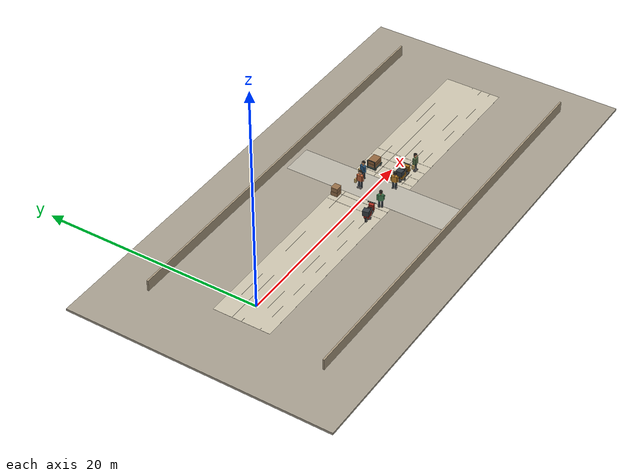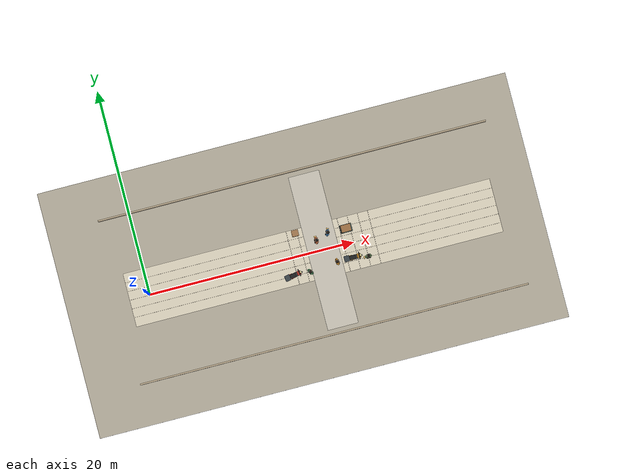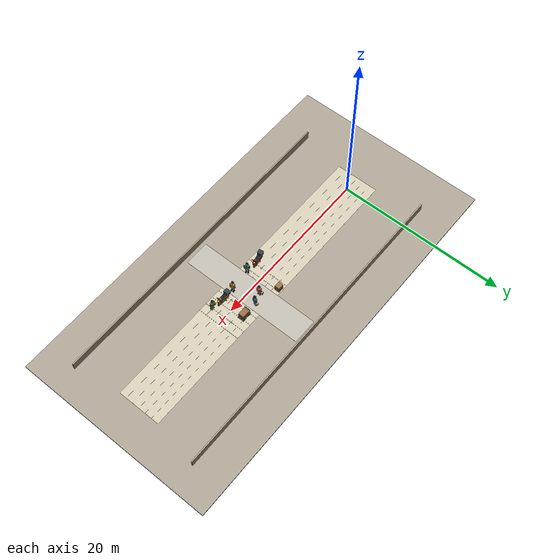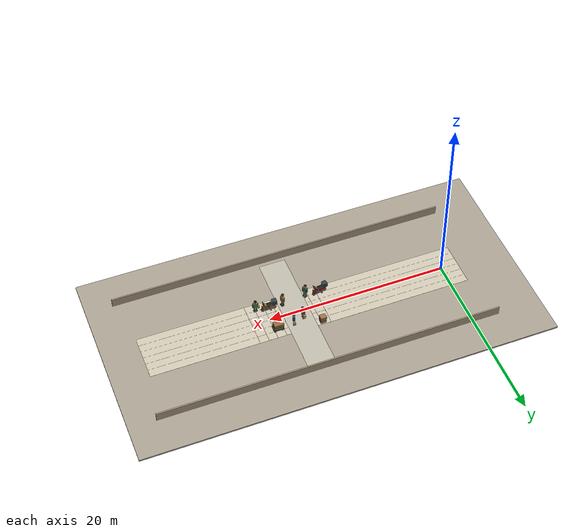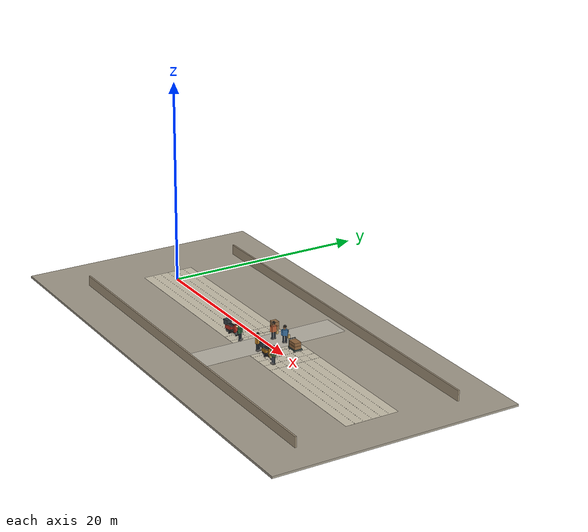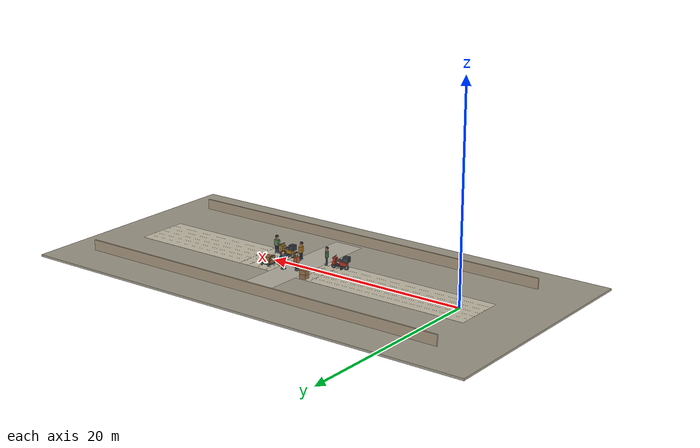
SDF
<sdf version="1.10">
 <world name="swan_market">
  <model name="ground">
   <static>true</static>
   <pose>15 0 -0.1 0 0 0</pose>
   <link name="body">
    <collision name="box_collision"><geometry><box><size>46 24 0.2</size></box></geometry></collision>
    <visual name="box_visual">
     <geometry><box><size>46 24 0.2</size></box></geometry>
     <material><ambient>0.64 0.61 0.55 1</ambient><diffuse>0.64 0.61 0.55 1</diffuse></material>
    </visual>
   </link>
  </model>
  <model name="market_paving">
   <static>true</static>
   <pose>16 0 0.002 0 0 0</pose>
   <link name="body">
    <visual name="box_visual">
     <geometry><box><size>36 5.2 0.004</size></box></geometry>
     <material><ambient>0.79 0.76 0.68 1</ambient><diffuse>0.79 0.76 0.68 1</diffuse></material>
    </visual>
   </link>
  </model>
  <model name="paving_joint_14">
   <static>true</static>
   <pose>14 0 0.0045 0 0 0</pose>
   <link name="body">
    <visual name="box_visual">
     <geometry><box><size>0.025 5.2 0.001</size></box></geometry>
     <material><ambient>0.67 0.64 0.57 1</ambient><diffuse>0.67 0.64 0.57 1</diffuse></material>
    </visual>
   </link>
  </model>
  <model name="paving_joint_15">
   <static>true</static>
   <pose>15 0 0.0045 0 0 0</pose>
   <link name="body">
    <visual name="box_visual">
     <geometry><box><size>0.025 5.2 0.001</size></box></geometry>
     <material><ambient>0.67 0.64 0.57 1</ambient><diffuse>0.67 0.64 0.57 1</diffuse></material>
    </visual>
   </link>
  </model>
  <model name="paving_joint_16">
   <static>true</static>
   <pose>16 0 0.0045 0 0 0</pose>
   <link name="body">
    <visual name="box_visual">
     <geometry><box><size>0.025 5.2 0.001</size></box></geometry>
     <material><ambient>0.67 0.64 0.57 1</ambient><diffuse>0.67 0.64 0.57 1</diffuse></material>
    </visual>
   </link>
  </model>
  <model name="paving_joint_17">
   <static>true</static>
   <pose>17 0 0.0045 0 0 0</pose>
   <link name="body">
    <visual name="box_visual">
     <geometry><box><size>0.025 5.2 0.001</size></box></geometry>
     <material><ambient>0.67 0.64 0.57 1</ambient><diffuse>0.67 0.64 0.57 1</diffuse></material>
    </visual>
   </link>
  </model>
  <model name="paving_joint_18">
   <static>true</static>
   <pose>18 0 0.0045 0 0 0</pose>
   <link name="body">
    <visual name="box_visual">
     <geometry><box><size>0.025 5.2 0.001</size></box></geometry>
     <material><ambient>0.67 0.64 0.57 1</ambient><diffuse>0.67 0.64 0.57 1</diffuse></material>
    </visual>
   </link>
  </model>
  <model name="paving_joint_19">
   <static>true</static>
   <pose>19 0 0.0045 0 0 0</pose>
   <link name="body">
    <visual name="box_visual">
     <geometry><box><size>0.025 5.2 0.001</size></box></geometry>
     <material><ambient>0.67 0.64 0.57 1</ambient><diffuse>0.67 0.64 0.57 1</diffuse></material>
    </visual>
   </link>
  </model>
  <model name="paving_joint_20">
   <static>true</static>
   <pose>20 0 0.0045 0 0 0</pose>
   <link name="body">
    <visual name="box_visual">
     <geometry><box><size>0.025 5.2 0.001</size></box></geometry>
     <material><ambient>0.67 0.64 0.57 1</ambient><diffuse>0.67 0.64 0.57 1</diffuse></material>
    </visual>
   </link>
  </model>
  <model name="paving_joint_21">
   <static>true</static>
   <pose>21 0 0.0045 0 0 0</pose>
   <link name="body">
    <visual name="box_visual">
     <geometry><box><size>0.025 5.2 0.001</size></box></geometry>
     <material><ambient>0.67 0.64 0.57 1</ambient><diffuse>0.67 0.64 0.57 1</diffuse></material>
    </visual>
   </link>
  </model>
  <model name="paving_joint_22">
   <static>true</static>
   <pose>22 0 0.0045 0 0 0</pose>
   <link name="body">
    <visual name="box_visual">
     <geometry><box><size>0.025 5.2 0.001</size></box></geometry>
     <material><ambient>0.67 0.64 0.57 1</ambient><diffuse>0.67 0.64 0.57 1</diffuse></material>
    </visual>
   </link>
  </model>
  <model name="paving_seam_-1.7">
   <static>true</static>
   <pose>16 -1.7 0.0045 0 0 0</pose>
   <link name="body">
    <visual name="box_visual">
     <geometry><box><size>36 0.015 0.001</size></box></geometry>
     <material><ambient>0.68 0.65 0.58 1</ambient><diffuse>0.68 0.65 0.58 1</diffuse></material>
    </visual>
   </link>
  </model>
  <model name="paving_seam_-0.85">
   <static>true</static>
   <pose>16 -0.85 0.0045 0 0 0</pose>
   <link name="body">
    <visual name="box_visual">
     <geometry><box><size>36 0.015 0.001</size></box></geometry>
     <material><ambient>0.68 0.65 0.58 1</ambient><diffuse>0.68 0.65 0.58 1</diffuse></material>
    </visual>
   </link>
  </model>
  <model name="paving_seam_0">
   <static>true</static>
   <pose>16 0 0.0045 0 0 0</pose>
   <link name="body">
    <visual name="box_visual">
     <geometry><box><size>36 0.015 0.001</size></box></geometry>
     <material><ambient>0.68 0.65 0.58 1</ambient><diffuse>0.68 0.65 0.58 1</diffuse></material>
    </visual>
   </link>
  </model>
  <model name="paving_seam_0.85">
   <static>true</static>
   <pose>16 0.85 0.0045 0 0 0</pose>
   <link name="body">
    <visual name="box_visual">
     <geometry><box><size>36 0.015 0.001</size></box></geometry>
     <material><ambient>0.68 0.65 0.58 1</ambient><diffuse>0.68 0.65 0.58 1</diffuse></material>
    </visual>
   </link>
  </model>
  <model name="paving_seam_1.7">
   <static>true</static>
   <pose>16 1.7 0.0045 0 0 0</pose>
   <link name="body">
    <visual name="box_visual">
     <geometry><box><size>36 0.015 0.001</size></box></geometry>
     <material><ambient>0.68 0.65 0.58 1</ambient><diffuse>0.68 0.65 0.58 1</diffuse></material>
    </visual>
   </link>
  </model>
  <model name="cross_aisle">
   <static>true</static>
   <pose>17 0 0.006 0 0 0</pose>
   <link name="body">
    <visual name="box_visual">
     <geometry><box><size>3 15 0.002</size></box></geometry>
     <material><ambient>0.72 0.7 0.65 1</ambient><diffuse>0.72 0.7 0.65 1</diffuse></material>
    </visual>
   </link>
  </model>
  <model name="boundary_-1">
   <static>true</static>
   <pose>16 -8 0.5 0 0 0</pose>
   <link name="body">
    <collision name="box_collision"><geometry><box><size>38 0.15 1</size></box></geometry></collision>
    <visual name="box_visual">
     <geometry><box><size>38 0.15 1</size></box></geometry>
     <material><ambient>0.65 0.59 0.49 1</ambient><diffuse>0.65 0.59 0.49 1</diffuse></material>
    </visual>
   </link>
  </model>
  <model name="boundary_1">
   <static>true</static>
   <pose>16 8 0.5 0 0 0</pose>
   <link name="body">
    <collision name="box_collision"><geometry><box><size>38 0.15 1</size></box></geometry></collision>
    <visual name="box_visual">
     <geometry><box><size>38 0.15 1</size></box></geometry>
     <material><ambient>0.65 0.59 0.49 1</ambient><diffuse>0.65 0.59 0.49 1</diffuse></material>
    </visual>
   </link>
  </model>
  <model name="shopper_crossing">
   <static>true</static>
   <pose>16.6 1 0 0 0 3.1416</pose>
   <link name="body">
    <collision name="leg_-1_collision">
     <pose>0 -0.12 0.4 0 0 0</pose>
     <geometry><cylinder><radius>0.085</radius><length>0.68</length></cylinder></geometry>
    </collision>
    <visual name="leg_-1_visual">
     <pose>0 -0.12 0.4 0 0 0</pose>
     <geometry><cylinder><radius>0.085</radius><length>0.68</length></cylinder></geometry>
     <material><ambient>0.12 0.15 0.18 1</ambient><diffuse>0.12 0.15 0.18 1</diffuse></material>
    </visual>
    <collision name="shoe_-1_collision">
     <pose>0.06 -0.12 0.055 0 0 0</pose>
     <geometry><box><size>0.28 0.17 0.11</size></box></geometry>
    </collision>
    <visual name="shoe_-1_visual">
     <pose>0.06 -0.12 0.055 0 0 0</pose>
     <geometry><box><size>0.28 0.17 0.11</size></box></geometry>
     <material><ambient>0.08 0.07 0.06 1</ambient><diffuse>0.08 0.07 0.06 1</diffuse></material>
    </visual>
    <collision name="arm_-1_collision">
     <pose>0.02 -0.27 1.02 0 -0.12 0</pose>
     <geometry><cylinder><radius>0.068</radius><length>0.48</length></cylinder></geometry>
    </collision>
    <visual name="arm_-1_visual">
     <pose>0.02 -0.27 1.02 0 -0.12 0</pose>
     <geometry><cylinder><radius>0.068</radius><length>0.48</length></cylinder></geometry>
     <material><ambient>0.74 0.38 0.22 1</ambient><diffuse>0.74 0.38 0.22 1</diffuse></material>
    </visual>
    <collision name="leg_1_collision">
     <pose>0 0.12 0.4 0 0 0</pose>
     <geometry><cylinder><radius>0.085</radius><length>0.68</length></cylinder></geometry>
    </collision>
    <visual name="leg_1_visual">
     <pose>0 0.12 0.4 0 0 0</pose>
     <geometry><cylinder><radius>0.085</radius><length>0.68</length></cylinder></geometry>
     <material><ambient>0.12 0.15 0.18 1</ambient><diffuse>0.12 0.15 0.18 1</diffuse></material>
    </visual>
    <collision name="shoe_1_collision">
     <pose>0.06 0.12 0.055 0 0 0</pose>
     <geometry><box><size>0.28 0.17 0.11</size></box></geometry>
    </collision>
    <visual name="shoe_1_visual">
     <pose>0.06 0.12 0.055 0 0 0</pose>
     <geometry><box><size>0.28 0.17 0.11</size></box></geometry>
     <material><ambient>0.08 0.07 0.06 1</ambient><diffuse>0.08 0.07 0.06 1</diffuse></material>
    </visual>
    <collision name="arm_1_collision">
     <pose>0.02 0.27 1.02 0 0.12 0</pose>
     <geometry><cylinder><radius>0.068</radius><length>0.48</length></cylinder></geometry>
    </collision>
    <visual name="arm_1_visual">
     <pose>0.02 0.27 1.02 0 0.12 0</pose>
     <geometry><cylinder><radius>0.068</radius><length>0.48</length></cylinder></geometry>
     <material><ambient>0.74 0.38 0.22 1</ambient><diffuse>0.74 0.38 0.22 1</diffuse></material>
    </visual>
    <collision name="torso_collision">
     <pose>0 0 1.02 0 0 0</pose>
     <geometry><box><size>0.3 0.43 0.58</size></box></geometry>
    </collision>
    <visual name="torso_visual">
     <pose>0 0 1.02 0 0 0</pose>
     <geometry><box><size>0.3 0.43 0.58</size></box></geometry>
     <material><ambient>0.74 0.38 0.22 1</ambient><diffuse>0.74 0.38 0.22 1</diffuse></material>
    </visual>
    <visual name="neck_visual">
     <pose>0 0 1.37 0 0 0</pose>
     <geometry><cylinder><radius>0.07</radius><length>0.13</length></cylinder></geometry>
     <material><ambient>0.77 0.56 0.4 1</ambient><diffuse>0.77 0.56 0.4 1</diffuse></material>
    </visual>
    <collision name="head_collision">
     <pose>0 0 1.57 0 0 0</pose>
     <geometry><sphere><radius>0.16</radius></sphere></geometry>
    </collision>
    <visual name="head_visual">
     <pose>0 0 1.57 0 0 0</pose>
     <geometry><sphere><radius>0.16</radius></sphere></geometry>
     <material><ambient>0.77 0.56 0.4 1</ambient><diffuse>0.77 0.56 0.4 1</diffuse></material>
    </visual>
    <visual name="hair_visual">
     <pose>-0.025 0 1.63 0 0 0</pose>
     <geometry><sphere><radius>0.155</radius></sphere></geometry>
     <material><ambient>0.1 0.08 0.06 1</ambient><diffuse>0.1 0.08 0.06 1</diffuse></material>
    </visual>
    <collision name="shopping_bag_collision">
     <pose>0.04 -0.38 0.6 0 0 0</pose>
     <geometry><box><size>0.24 0.17 0.33</size></box></geometry>
    </collision>
    <visual name="shopping_bag_visual">
     <pose>0.04 -0.38 0.6 0 0 0</pose>
     <geometry><box><size>0.24 0.17 0.33</size></box></geometry>
     <material><ambient>0.78 0.65 0.39 1</ambient><diffuse>0.78 0.65 0.39 1</diffuse></material>
    </visual>
   </link>
  </model>
  <model name="shopper_grocery">
   <static>true</static>
   <pose>21 -1.65 0 0 0 -1.5708</pose>
   <link name="body">
    <collision name="leg_-1_collision">
     <pose>0 -0.12 0.4 0 0 0</pose>
     <geometry><cylinder><radius>0.085</radius><length>0.68</length></cylinder></geometry>
    </collision>
    <visual name="leg_-1_visual">
     <pose>0 -0.12 0.4 0 0 0</pose>
     <geometry><cylinder><radius>0.085</radius><length>0.68</length></cylinder></geometry>
     <material><ambient>0.12 0.15 0.18 1</ambient><diffuse>0.12 0.15 0.18 1</diffuse></material>
    </visual>
    <collision name="shoe_-1_collision">
     <pose>0.06 -0.12 0.055 0 0 0</pose>
     <geometry><box><size>0.28 0.17 0.11</size></box></geometry>
    </collision>
    <visual name="shoe_-1_visual">
     <pose>0.06 -0.12 0.055 0 0 0</pose>
     <geometry><box><size>0.28 0.17 0.11</size></box></geometry>
     <material><ambient>0.08 0.07 0.06 1</ambient><diffuse>0.08 0.07 0.06 1</diffuse></material>
    </visual>
    <collision name="arm_-1_collision">
     <pose>0.02 -0.27 1.02 0 -0.12 0</pose>
     <geometry><cylinder><radius>0.068</radius><length>0.48</length></cylinder></geometry>
    </collision>
    <visual name="arm_-1_visual">
     <pose>0.02 -0.27 1.02 0 -0.12 0</pose>
     <geometry><cylinder><radius>0.068</radius><length>0.48</length></cylinder></geometry>
     <material><ambient>0.36 0.48 0.31 1</ambient><diffuse>0.36 0.48 0.31 1</diffuse></material>
    </visual>
    <collision name="leg_1_collision">
     <pose>0 0.12 0.4 0 0 0</pose>
     <geometry><cylinder><radius>0.085</radius><length>0.68</length></cylinder></geometry>
    </collision>
    <visual name="leg_1_visual">
     <pose>0 0.12 0.4 0 0 0</pose>
     <geometry><cylinder><radius>0.085</radius><length>0.68</length></cylinder></geometry>
     <material><ambient>0.12 0.15 0.18 1</ambient><diffuse>0.12 0.15 0.18 1</diffuse></material>
    </visual>
    <collision name="shoe_1_collision">
     <pose>0.06 0.12 0.055 0 0 0</pose>
     <geometry><box><size>0.28 0.17 0.11</size></box></geometry>
    </collision>
    <visual name="shoe_1_visual">
     <pose>0.06 0.12 0.055 0 0 0</pose>
     <geometry><box><size>0.28 0.17 0.11</size></box></geometry>
     <material><ambient>0.08 0.07 0.06 1</ambient><diffuse>0.08 0.07 0.06 1</diffuse></material>
    </visual>
    <collision name="arm_1_collision">
     <pose>0.02 0.27 1.02 0 0.12 0</pose>
     <geometry><cylinder><radius>0.068</radius><length>0.48</length></cylinder></geometry>
    </collision>
    <visual name="arm_1_visual">
     <pose>0.02 0.27 1.02 0 0.12 0</pose>
     <geometry><cylinder><radius>0.068</radius><length>0.48</length></cylinder></geometry>
     <material><ambient>0.36 0.48 0.31 1</ambient><diffuse>0.36 0.48 0.31 1</diffuse></material>
    </visual>
    <collision name="torso_collision">
     <pose>0 0 1.02 0 0 0</pose>
     <geometry><box><size>0.3 0.43 0.58</size></box></geometry>
    </collision>
    <visual name="torso_visual">
     <pose>0 0 1.02 0 0 0</pose>
     <geometry><box><size>0.3 0.43 0.58</size></box></geometry>
     <material><ambient>0.36 0.48 0.31 1</ambient><diffuse>0.36 0.48 0.31 1</diffuse></material>
    </visual>
    <visual name="neck_visual">
     <pose>0 0 1.37 0 0 0</pose>
     <geometry><cylinder><radius>0.07</radius><length>0.13</length></cylinder></geometry>
     <material><ambient>0.77 0.56 0.4 1</ambient><diffuse>0.77 0.56 0.4 1</diffuse></material>
    </visual>
    <collision name="head_collision">
     <pose>0 0 1.57 0 0 0</pose>
     <geometry><sphere><radius>0.16</radius></sphere></geometry>
    </collision>
    <visual name="head_visual">
     <pose>0 0 1.57 0 0 0</pose>
     <geometry><sphere><radius>0.16</radius></sphere></geometry>
     <material><ambient>0.77 0.56 0.4 1</ambient><diffuse>0.77 0.56 0.4 1</diffuse></material>
    </visual>
    <visual name="hair_visual">
     <pose>-0.025 0 1.63 0 0 0</pose>
     <geometry><sphere><radius>0.155</radius></sphere></geometry>
     <material><ambient>0.1 0.08 0.06 1</ambient><diffuse>0.1 0.08 0.06 1</diffuse></material>
    </visual>
    <collision name="shopping_bag_collision">
     <pose>0.04 -0.38 0.6 0 0 0</pose>
     <geometry><box><size>0.24 0.17 0.33</size></box></geometry>
    </collision>
    <visual name="shopping_bag_visual">
     <pose>0.04 -0.38 0.6 0 0 0</pose>
     <geometry><box><size>0.24 0.17 0.33</size></box></geometry>
     <material><ambient>0.78 0.65 0.39 1</ambient><diffuse>0.78 0.65 0.39 1</diffuse></material>
    </visual>
   </link>
  </model>
  <model name="motorcycle_delivery">
   <static>true</static>
   <pose>13.7 -1.65 0 0 0 0.18</pose>
   <link name="body">
    <collision name="tire_0_collision">
     <pose>-0.61 0 0.25 1.5708 0 0</pose>
     <geometry><cylinder><radius>0.25</radius><length>0.14</length></cylinder></geometry>
    </collision>
    <visual name="tire_0_visual">
     <pose>-0.61 0 0.25 1.5708 0 0</pose>
     <geometry><cylinder><radius>0.25</radius><length>0.14</length></cylinder></geometry>
     <material><ambient>0.075 0.075 0.07 1</ambient><diffuse>0.075 0.075 0.07 1</diffuse></material>
    </visual>
    <visual name="hub_0_visual">
     <pose>-0.61 0 0.25 1.5708 0 0</pose>
     <geometry><cylinder><radius>0.13</radius><length>0.145</length></cylinder></geometry>
     <material><ambient>0.57 0.59 0.6 1</ambient><diffuse>0.57 0.59 0.6 1</diffuse></material>
    </visual>
    <collision name="tire_1_collision">
     <pose>0.62 0 0.25 1.5708 0 0</pose>
     <geometry><cylinder><radius>0.25</radius><length>0.14</length></cylinder></geometry>
    </collision>
    <visual name="tire_1_visual">
     <pose>0.62 0 0.25 1.5708 0 0</pose>
     <geometry><cylinder><radius>0.25</radius><length>0.14</length></cylinder></geometry>
     <material><ambient>0.075 0.075 0.07 1</ambient><diffuse>0.075 0.075 0.07 1</diffuse></material>
    </visual>
    <visual name="hub_1_visual">
     <pose>0.62 0 0.25 1.5708 0 0</pose>
     <geometry><cylinder><radius>0.13</radius><length>0.145</length></cylinder></geometry>
     <material><ambient>0.57 0.59 0.6 1</ambient><diffuse>0.57 0.59 0.6 1</diffuse></material>
    </visual>
    <collision name="deck_collision">
     <pose>0 0 0.33 0 0 0</pose>
     <geometry><box><size>1.2 0.43 0.17</size></box></geometry>
    </collision>
    <visual name="deck_visual">
     <pose>0 0 0.33 0 0 0</pose>
     <geometry><box><size>1.2 0.43 0.17</size></box></geometry>
     <material><ambient>0.18 0.18 0.18 1</ambient><diffuse>0.18 0.18 0.18 1</diffuse></material>
    </visual>
    <collision name="rear_body_collision">
     <pose>-0.36 0 0.59 0 0 0</pose>
     <geometry><box><size>0.65 0.46 0.4</size></box></geometry>
    </collision>
    <visual name="rear_body_visual">
     <pose>-0.36 0 0.59 0 0 0</pose>
     <geometry><box><size>0.65 0.46 0.4</size></box></geometry>
     <material><ambient>0.65 0.17 0.12 1</ambient><diffuse>0.65 0.17 0.12 1</diffuse></material>
    </visual>
    <collision name="seat_collision">
     <pose>-0.2 0 0.83 0 0 0</pose>
     <geometry><box><size>0.8 0.4 0.12</size></box></geometry>
    </collision>
    <visual name="seat_visual">
     <pose>-0.2 0 0.83 0 0 0</pose>
     <geometry><box><size>0.8 0.4 0.12</size></box></geometry>
     <material><ambient>0.1 0.1 0.1 1</ambient><diffuse>0.1 0.1 0.1 1</diffuse></material>
    </visual>
    <collision name="front_fairing_collision">
     <pose>0.53 0 0.69 0 -0.2 0</pose>
     <geometry><box><size>0.23 0.43 0.69</size></box></geometry>
    </collision>
    <visual name="front_fairing_visual">
     <pose>0.53 0 0.69 0 -0.2 0</pose>
     <geometry><box><size>0.23 0.43 0.69</size></box></geometry>
     <material><ambient>0.65 0.17 0.12 1</ambient><diffuse>0.65 0.17 0.12 1</diffuse></material>
    </visual>
    <collision name="handlebar_collision">
     <pose>0.56 0 1.12 1.5708 0 0</pose>
     <geometry><cylinder><radius>0.035</radius><length>0.72</length></cylinder></geometry>
    </collision>
    <visual name="handlebar_visual">
     <pose>0.56 0 1.12 1.5708 0 0</pose>
     <geometry><cylinder><radius>0.035</radius><length>0.72</length></cylinder></geometry>
     <material><ambient>0.18 0.18 0.18 1</ambient><diffuse>0.18 0.18 0.18 1</diffuse></material>
    </visual>
    <visual name="headlight_visual">
     <pose>0.7 0 0.94 0 0 0</pose>
     <geometry><sphere><radius>0.095</radius></sphere></geometry>
     <material><ambient>0.96 0.92 0.66 1</ambient><diffuse>0.96 0.92 0.66 1</diffuse></material>
    </visual>
    <collision name="delivery_box_collision">
     <pose>-0.65 0 1.01 0 0 0</pose>
     <geometry><box><size>0.51 0.55 0.48</size></box></geometry>
    </collision>
    <visual name="delivery_box_visual">
     <pose>-0.65 0 1.01 0 0 0</pose>
     <geometry><box><size>0.51 0.55 0.48</size></box></geometry>
     <material><ambient>0.2 0.23 0.25 1</ambient><diffuse>0.2 0.23 0.25 1</diffuse></material>
    </visual>
    <collision name="stand_collision">
     <pose>-0.2 0 0.1 0 0 0</pose>
     <geometry><box><size>0.12 0.5 0.2</size></box></geometry>
    </collision>
    <visual name="stand_visual">
     <pose>-0.2 0 0.1 0 0 0</pose>
     <geometry><box><size>0.12 0.5 0.2</size></box></geometry>
     <material><ambient>0.12 0.12 0.12 1</ambient><diffuse>0.12 0.12 0.12 1</diffuse></material>
    </visual>
   </link>
  </model>
  <model name="handcart_unloading">
   <static>true</static>
   <pose>19.6 1.45 0 0 0 0</pose>
   <link name="body">
    <collision name="bed_collision">
     <pose>0 0 0.2 0 0 0</pose>
     <geometry><box><size>1.15 0.8 0.1</size></box></geometry>
    </collision>
    <visual name="bed_visual">
     <pose>0 0 0.2 0 0 0</pose>
     <geometry><box><size>1.15 0.8 0.1</size></box></geometry>
     <material><ambient>0.25 0.33 0.31 1</ambient><diffuse>0.25 0.33 0.31 1</diffuse></material>
    </visual>
    <collision name="wheel_-0.4_-0.34_collision">
     <pose>-0.4 -0.34 0.13 1.5708 0 0</pose>
     <geometry><cylinder><radius>0.13</radius><length>0.1</length></cylinder></geometry>
    </collision>
    <visual name="wheel_-0.4_-0.34_visual">
     <pose>-0.4 -0.34 0.13 1.5708 0 0</pose>
     <geometry><cylinder><radius>0.13</radius><length>0.1</length></cylinder></geometry>
     <material><ambient>0.09 0.09 0.08 1</ambient><diffuse>0.09 0.09 0.08 1</diffuse></material>
    </visual>
    <collision name="wheel_-0.4_0.34_collision">
     <pose>-0.4 0.34 0.13 1.5708 0 0</pose>
     <geometry><cylinder><radius>0.13</radius><length>0.1</length></cylinder></geometry>
    </collision>
    <visual name="wheel_-0.4_0.34_visual">
     <pose>-0.4 0.34 0.13 1.5708 0 0</pose>
     <geometry><cylinder><radius>0.13</radius><length>0.1</length></cylinder></geometry>
     <material><ambient>0.09 0.09 0.08 1</ambient><diffuse>0.09 0.09 0.08 1</diffuse></material>
    </visual>
    <collision name="wheel_0.4_-0.34_collision">
     <pose>0.4 -0.34 0.13 1.5708 0 0</pose>
     <geometry><cylinder><radius>0.13</radius><length>0.1</length></cylinder></geometry>
    </collision>
    <visual name="wheel_0.4_-0.34_visual">
     <pose>0.4 -0.34 0.13 1.5708 0 0</pose>
     <geometry><cylinder><radius>0.13</radius><length>0.1</length></cylinder></geometry>
     <material><ambient>0.09 0.09 0.08 1</ambient><diffuse>0.09 0.09 0.08 1</diffuse></material>
    </visual>
    <collision name="wheel_0.4_0.34_collision">
     <pose>0.4 0.34 0.13 1.5708 0 0</pose>
     <geometry><cylinder><radius>0.13</radius><length>0.1</length></cylinder></geometry>
    </collision>
    <visual name="wheel_0.4_0.34_visual">
     <pose>0.4 0.34 0.13 1.5708 0 0</pose>
     <geometry><cylinder><radius>0.13</radius><length>0.1</length></cylinder></geometry>
     <material><ambient>0.09 0.09 0.08 1</ambient><diffuse>0.09 0.09 0.08 1</diffuse></material>
    </visual>
    <collision name="cargo_0.41_collision">
     <pose>0 0 0.41 0 0 0</pose>
     <geometry><box><size>0.95 0.68 0.3</size></box></geometry>
    </collision>
    <visual name="cargo_0.41_visual">
     <pose>0 0 0.41 0 0 0</pose>
     <geometry><box><size>0.95 0.68 0.3</size></box></geometry>
     <material><ambient>0.57 0.4 0.24 1</ambient><diffuse>0.57 0.4 0.24 1</diffuse></material>
    </visual>
    <collision name="cargo_0.73_collision">
     <pose>0 0 0.73 0 0 0</pose>
     <geometry><box><size>0.95 0.68 0.3</size></box></geometry>
    </collision>
    <visual name="cargo_0.73_visual">
     <pose>0 0 0.73 0 0 0</pose>
     <geometry><box><size>0.95 0.68 0.3</size></box></geometry>
     <material><ambient>0.57 0.4 0.24 1</ambient><diffuse>0.57 0.4 0.24 1</diffuse></material>
    </visual>
    <collision name="handle_-0.34_collision">
     <pose>-0.55 -0.34 0.58 0 0 0</pose>
     <geometry><cylinder><radius>0.025</radius><length>0.75</length></cylinder></geometry>
    </collision>
    <visual name="handle_-0.34_visual">
     <pose>-0.55 -0.34 0.58 0 0 0</pose>
     <geometry><cylinder><radius>0.025</radius><length>0.75</length></cylinder></geometry>
     <material><ambient>0.3 0.34 0.32 1</ambient><diffuse>0.3 0.34 0.32 1</diffuse></material>
    </visual>
    <collision name="handle_0.34_collision">
     <pose>-0.55 0.34 0.58 0 0 0</pose>
     <geometry><cylinder><radius>0.025</radius><length>0.75</length></cylinder></geometry>
    </collision>
    <visual name="handle_0.34_visual">
     <pose>-0.55 0.34 0.58 0 0 0</pose>
     <geometry><cylinder><radius>0.025</radius><length>0.75</length></cylinder></geometry>
     <material><ambient>0.3 0.34 0.32 1</ambient><diffuse>0.3 0.34 0.32 1</diffuse></material>
    </visual>
    <collision name="grip_collision">
     <pose>-0.55 0 0.95 1.5708 0 0</pose>
     <geometry><cylinder><radius>0.03</radius><length>0.7</length></cylinder></geometry>
    </collision>
    <visual name="grip_visual">
     <pose>-0.55 0 0.95 1.5708 0 0</pose>
     <geometry><cylinder><radius>0.03</radius><length>0.7</length></cylinder></geometry>
     <material><ambient>0.15 0.16 0.15 1</ambient><diffuse>0.15 0.16 0.15 1</diffuse></material>
    </visual>
   </link>
  </model>
  <model name="stock_stack_1_0">
   <static>true</static>
   <pose>14.8 2.2 0.2 0 0 0</pose>
   <link name="body">
    <collision name="box_collision"><geometry><box><size>0.65 0.6 0.4</size></box></geometry></collision>
    <visual name="box_visual">
     <geometry><box><size>0.65 0.6 0.4</size></box></geometry>
     <material><ambient>0.58 0.43 0.28 1</ambient><diffuse>0.58 0.43 0.28 1</diffuse></material>
    </visual>
   </link>
  </model>
  <model name="stock_stack_1_1">
   <static>true</static>
   <pose>14.8 2.2 0.6 0 0 0</pose>
   <link name="body">
    <collision name="box_collision"><geometry><box><size>0.65 0.6 0.4</size></box></geometry></collision>
    <visual name="box_visual">
     <geometry><box><size>0.65 0.6 0.4</size></box></geometry>
     <material><ambient>0.58 0.43 0.28 1</ambient><diffuse>0.58 0.43 0.28 1</diffuse></material>
    </visual>
   </link>
  </model>
  <model name="crowd_05">
   <static>true</static>
   <pose>15.3 -1.75 0 0 0 0.6</pose>
   <link name="body">
    <collision name="leg_-1_collision">
     <pose>0 -0.12 0.4 0 0 0</pose>
     <geometry><cylinder><radius>0.085</radius><length>0.68</length></cylinder></geometry>
    </collision>
    <visual name="leg_-1_visual">
     <pose>0 -0.12 0.4 0 0 0</pose>
     <geometry><cylinder><radius>0.085</radius><length>0.68</length></cylinder></geometry>
     <material><ambient>0.12 0.15 0.18 1</ambient><diffuse>0.12 0.15 0.18 1</diffuse></material>
    </visual>
    <collision name="shoe_-1_collision">
     <pose>0.06 -0.12 0.055 0 0 0</pose>
     <geometry><box><size>0.28 0.17 0.11</size></box></geometry>
    </collision>
    <visual name="shoe_-1_visual">
     <pose>0.06 -0.12 0.055 0 0 0</pose>
     <geometry><box><size>0.28 0.17 0.11</size></box></geometry>
     <material><ambient>0.08 0.07 0.06 1</ambient><diffuse>0.08 0.07 0.06 1</diffuse></material>
    </visual>
    <collision name="arm_-1_collision">
     <pose>0.02 -0.27 1.02 0 -0.12 0</pose>
     <geometry><cylinder><radius>0.068</radius><length>0.48</length></cylinder></geometry>
    </collision>
    <visual name="arm_-1_visual">
     <pose>0.02 -0.27 1.02 0 -0.12 0</pose>
     <geometry><cylinder><radius>0.068</radius><length>0.48</length></cylinder></geometry>
     <material><ambient>0.23 0.46 0.29 1</ambient><diffuse>0.23 0.46 0.29 1</diffuse></material>
    </visual>
    <collision name="leg_1_collision">
     <pose>0 0.12 0.4 0 0 0</pose>
     <geometry><cylinder><radius>0.085</radius><length>0.68</length></cylinder></geometry>
    </collision>
    <visual name="leg_1_visual">
     <pose>0 0.12 0.4 0 0 0</pose>
     <geometry><cylinder><radius>0.085</radius><length>0.68</length></cylinder></geometry>
     <material><ambient>0.12 0.15 0.18 1</ambient><diffuse>0.12 0.15 0.18 1</diffuse></material>
    </visual>
    <collision name="shoe_1_collision">
     <pose>0.06 0.12 0.055 0 0 0</pose>
     <geometry><box><size>0.28 0.17 0.11</size></box></geometry>
    </collision>
    <visual name="shoe_1_visual">
     <pose>0.06 0.12 0.055 0 0 0</pose>
     <geometry><box><size>0.28 0.17 0.11</size></box></geometry>
     <material><ambient>0.08 0.07 0.06 1</ambient><diffuse>0.08 0.07 0.06 1</diffuse></material>
    </visual>
    <collision name="arm_1_collision">
     <pose>0.02 0.27 1.02 0 0.12 0</pose>
     <geometry><cylinder><radius>0.068</radius><length>0.48</length></cylinder></geometry>
    </collision>
    <visual name="arm_1_visual">
     <pose>0.02 0.27 1.02 0 0.12 0</pose>
     <geometry><cylinder><radius>0.068</radius><length>0.48</length></cylinder></geometry>
     <material><ambient>0.23 0.46 0.29 1</ambient><diffuse>0.23 0.46 0.29 1</diffuse></material>
    </visual>
    <collision name="torso_collision">
     <pose>0 0 1.02 0 0 0</pose>
     <geometry><box><size>0.3 0.43 0.58</size></box></geometry>
    </collision>
    <visual name="torso_visual">
     <pose>0 0 1.02 0 0 0</pose>
     <geometry><box><size>0.3 0.43 0.58</size></box></geometry>
     <material><ambient>0.23 0.46 0.29 1</ambient><diffuse>0.23 0.46 0.29 1</diffuse></material>
    </visual>
    <visual name="neck_visual">
     <pose>0 0 1.37 0 0 0</pose>
     <geometry><cylinder><radius>0.07</radius><length>0.13</length></cylinder></geometry>
     <material><ambient>0.77 0.56 0.4 1</ambient><diffuse>0.77 0.56 0.4 1</diffuse></material>
    </visual>
    <collision name="head_collision">
     <pose>0 0 1.57 0 0 0</pose>
     <geometry><sphere><radius>0.16</radius></sphere></geometry>
    </collision>
    <visual name="head_visual">
     <pose>0 0 1.57 0 0 0</pose>
     <geometry><sphere><radius>0.16</radius></sphere></geometry>
     <material><ambient>0.77 0.56 0.4 1</ambient><diffuse>0.77 0.56 0.4 1</diffuse></material>
    </visual>
    <visual name="hair_visual">
     <pose>-0.025 0 1.63 0 0 0</pose>
     <geometry><sphere><radius>0.155</radius></sphere></geometry>
     <material><ambient>0.1 0.08 0.06 1</ambient><diffuse>0.1 0.08 0.06 1</diffuse></material>
    </visual>
   </link>
  </model>
  <model name="crowd_06">
   <static>true</static>
   <pose>17.8 1.45 0 0 0 2.8</pose>
   <link name="body">
    <collision name="leg_-1_collision">
     <pose>0 -0.12 0.4 0 0 0</pose>
     <geometry><cylinder><radius>0.085</radius><length>0.68</length></cylinder></geometry>
    </collision>
    <visual name="leg_-1_visual">
     <pose>0 -0.12 0.4 0 0 0</pose>
     <geometry><cylinder><radius>0.085</radius><length>0.68</length></cylinder></geometry>
     <material><ambient>0.12 0.15 0.18 1</ambient><diffuse>0.12 0.15 0.18 1</diffuse></material>
    </visual>
    <collision name="shoe_-1_collision">
     <pose>0.06 -0.12 0.055 0 0 0</pose>
     <geometry><box><size>0.28 0.17 0.11</size></box></geometry>
    </collision>
    <visual name="shoe_-1_visual">
     <pose>0.06 -0.12 0.055 0 0 0</pose>
     <geometry><box><size>0.28 0.17 0.11</size></box></geometry>
     <material><ambient>0.08 0.07 0.06 1</ambient><diffuse>0.08 0.07 0.06 1</diffuse></material>
    </visual>
    <collision name="arm_-1_collision">
     <pose>0.02 -0.27 1.02 0 -0.12 0</pose>
     <geometry><cylinder><radius>0.068</radius><length>0.48</length></cylinder></geometry>
    </collision>
    <visual name="arm_-1_visual">
     <pose>0.02 -0.27 1.02 0 -0.12 0</pose>
     <geometry><cylinder><radius>0.068</radius><length>0.48</length></cylinder></geometry>
     <material><ambient>0.2 0.4 0.57 1</ambient><diffuse>0.2 0.4 0.57 1</diffuse></material>
    </visual>
    <collision name="leg_1_collision">
     <pose>0 0.12 0.4 0 0 0</pose>
     <geometry><cylinder><radius>0.085</radius><length>0.68</length></cylinder></geometry>
    </collision>
    <visual name="leg_1_visual">
     <pose>0 0.12 0.4 0 0 0</pose>
     <geometry><cylinder><radius>0.085</radius><length>0.68</length></cylinder></geometry>
     <material><ambient>0.12 0.15 0.18 1</ambient><diffuse>0.12 0.15 0.18 1</diffuse></material>
    </visual>
    <collision name="shoe_1_collision">
     <pose>0.06 0.12 0.055 0 0 0</pose>
     <geometry><box><size>0.28 0.17 0.11</size></box></geometry>
    </collision>
    <visual name="shoe_1_visual">
     <pose>0.06 0.12 0.055 0 0 0</pose>
     <geometry><box><size>0.28 0.17 0.11</size></box></geometry>
     <material><ambient>0.08 0.07 0.06 1</ambient><diffuse>0.08 0.07 0.06 1</diffuse></material>
    </visual>
    <collision name="arm_1_collision">
     <pose>0.02 0.27 1.02 0 0.12 0</pose>
     <geometry><cylinder><radius>0.068</radius><length>0.48</length></cylinder></geometry>
    </collision>
    <visual name="arm_1_visual">
     <pose>0.02 0.27 1.02 0 0.12 0</pose>
     <geometry><cylinder><radius>0.068</radius><length>0.48</length></cylinder></geometry>
     <material><ambient>0.2 0.4 0.57 1</ambient><diffuse>0.2 0.4 0.57 1</diffuse></material>
    </visual>
    <collision name="torso_collision">
     <pose>0 0 1.02 0 0 0</pose>
     <geometry><box><size>0.3 0.43 0.58</size></box></geometry>
    </collision>
    <visual name="torso_visual">
     <pose>0 0 1.02 0 0 0</pose>
     <geometry><box><size>0.3 0.43 0.58</size></box></geometry>
     <material><ambient>0.2 0.4 0.57 1</ambient><diffuse>0.2 0.4 0.57 1</diffuse></material>
    </visual>
    <visual name="neck_visual">
     <pose>0 0 1.37 0 0 0</pose>
     <geometry><cylinder><radius>0.07</radius><length>0.13</length></cylinder></geometry>
     <material><ambient>0.77 0.56 0.4 1</ambient><diffuse>0.77 0.56 0.4 1</diffuse></material>
    </visual>
    <collision name="head_collision">
     <pose>0 0 1.57 0 0 0</pose>
     <geometry><sphere><radius>0.16</radius></sphere></geometry>
    </collision>
    <visual name="head_visual">
     <pose>0 0 1.57 0 0 0</pose>
     <geometry><sphere><radius>0.16</radius></sphere></geometry>
     <material><ambient>0.77 0.56 0.4 1</ambient><diffuse>0.77 0.56 0.4 1</diffuse></material>
    </visual>
    <visual name="hair_visual">
     <pose>-0.025 0 1.63 0 0 0</pose>
     <geometry><sphere><radius>0.155</radius></sphere></geometry>
     <material><ambient>0.1 0.08 0.06 1</ambient><diffuse>0.1 0.08 0.06 1</diffuse></material>
    </visual>
    <collision name="shopping_bag_collision">
     <pose>0.04 -0.38 0.6 0 0 0</pose>
     <geometry><box><size>0.24 0.17 0.33</size></box></geometry>
    </collision>
    <visual name="shopping_bag_visual">
     <pose>0.04 -0.38 0.6 0 0 0</pose>
     <geometry><box><size>0.24 0.17 0.33</size></box></geometry>
     <material><ambient>0.78 0.65 0.39 1</ambient><diffuse>0.78 0.65 0.39 1</diffuse></material>
    </visual>
   </link>
  </model>
  <model name="crowd_07">
   <static>true</static>
   <pose>18 -1.45 0 0 0 0.2</pose>
   <link name="body">
    <collision name="leg_-1_collision">
     <pose>0 -0.12 0.4 0 0 0</pose>
     <geometry><cylinder><radius>0.085</radius><length>0.68</length></cylinder></geometry>
    </collision>
    <visual name="leg_-1_visual">
     <pose>0 -0.12 0.4 0 0 0</pose>
     <geometry><cylinder><radius>0.085</radius><length>0.68</length></cylinder></geometry>
     <material><ambient>0.12 0.15 0.18 1</ambient><diffuse>0.12 0.15 0.18 1</diffuse></material>
    </visual>
    <collision name="shoe_-1_collision">
     <pose>0.06 -0.12 0.055 0 0 0</pose>
     <geometry><box><size>0.28 0.17 0.11</size></box></geometry>
    </collision>
    <visual name="shoe_-1_visual">
     <pose>0.06 -0.12 0.055 0 0 0</pose>
     <geometry><box><size>0.28 0.17 0.11</size></box></geometry>
     <material><ambient>0.08 0.07 0.06 1</ambient><diffuse>0.08 0.07 0.06 1</diffuse></material>
    </visual>
    <collision name="arm_-1_collision">
     <pose>0.02 -0.27 1.02 0 -0.12 0</pose>
     <geometry><cylinder><radius>0.068</radius><length>0.48</length></cylinder></geometry>
    </collision>
    <visual name="arm_-1_visual">
     <pose>0.02 -0.27 1.02 0 -0.12 0</pose>
     <geometry><cylinder><radius>0.068</radius><length>0.48</length></cylinder></geometry>
     <material><ambient>0.72 0.49 0.15 1</ambient><diffuse>0.72 0.49 0.15 1</diffuse></material>
    </visual>
    <collision name="leg_1_collision">
     <pose>0 0.12 0.4 0 0 0</pose>
     <geometry><cylinder><radius>0.085</radius><length>0.68</length></cylinder></geometry>
    </collision>
    <visual name="leg_1_visual">
     <pose>0 0.12 0.4 0 0 0</pose>
     <geometry><cylinder><radius>0.085</radius><length>0.68</length></cylinder></geometry>
     <material><ambient>0.12 0.15 0.18 1</ambient><diffuse>0.12 0.15 0.18 1</diffuse></material>
    </visual>
    <collision name="shoe_1_collision">
     <pose>0.06 0.12 0.055 0 0 0</pose>
     <geometry><box><size>0.28 0.17 0.11</size></box></geometry>
    </collision>
    <visual name="shoe_1_visual">
     <pose>0.06 0.12 0.055 0 0 0</pose>
     <geometry><box><size>0.28 0.17 0.11</size></box></geometry>
     <material><ambient>0.08 0.07 0.06 1</ambient><diffuse>0.08 0.07 0.06 1</diffuse></material>
    </visual>
    <collision name="arm_1_collision">
     <pose>0.02 0.27 1.02 0 0.12 0</pose>
     <geometry><cylinder><radius>0.068</radius><length>0.48</length></cylinder></geometry>
    </collision>
    <visual name="arm_1_visual">
     <pose>0.02 0.27 1.02 0 0.12 0</pose>
     <geometry><cylinder><radius>0.068</radius><length>0.48</length></cylinder></geometry>
     <material><ambient>0.72 0.49 0.15 1</ambient><diffuse>0.72 0.49 0.15 1</diffuse></material>
    </visual>
    <collision name="torso_collision">
     <pose>0 0 1.02 0 0 0</pose>
     <geometry><box><size>0.3 0.43 0.58</size></box></geometry>
    </collision>
    <visual name="torso_visual">
     <pose>0 0 1.02 0 0 0</pose>
     <geometry><box><size>0.3 0.43 0.58</size></box></geometry>
     <material><ambient>0.72 0.49 0.15 1</ambient><diffuse>0.72 0.49 0.15 1</diffuse></material>
    </visual>
    <visual name="neck_visual">
     <pose>0 0 1.37 0 0 0</pose>
     <geometry><cylinder><radius>0.07</radius><length>0.13</length></cylinder></geometry>
     <material><ambient>0.77 0.56 0.4 1</ambient><diffuse>0.77 0.56 0.4 1</diffuse></material>
    </visual>
    <collision name="head_collision">
     <pose>0 0 1.57 0 0 0</pose>
     <geometry><sphere><radius>0.16</radius></sphere></geometry>
    </collision>
    <visual name="head_visual">
     <pose>0 0 1.57 0 0 0</pose>
     <geometry><sphere><radius>0.16</radius></sphere></geometry>
     <material><ambient>0.77 0.56 0.4 1</ambient><diffuse>0.77 0.56 0.4 1</diffuse></material>
    </visual>
    <visual name="hair_visual">
     <pose>-0.025 0 1.63 0 0 0</pose>
     <geometry><sphere><radius>0.155</radius></sphere></geometry>
     <material><ambient>0.1 0.08 0.06 1</ambient><diffuse>0.1 0.08 0.06 1</diffuse></material>
    </visual>
   </link>
  </model>
  <model name="motorcycle_unloading">
   <static>true</static>
   <pose>19.6 -1.4 0 0 0 0</pose>
   <link name="body">
    <collision name="tire_0_collision">
     <pose>-0.61 0 0.25 1.5708 0 0</pose>
     <geometry><cylinder><radius>0.25</radius><length>0.14</length></cylinder></geometry>
    </collision>
    <visual name="tire_0_visual">
     <pose>-0.61 0 0.25 1.5708 0 0</pose>
     <geometry><cylinder><radius>0.25</radius><length>0.14</length></cylinder></geometry>
     <material><ambient>0.075 0.075 0.07 1</ambient><diffuse>0.075 0.075 0.07 1</diffuse></material>
    </visual>
    <visual name="hub_0_visual">
     <pose>-0.61 0 0.25 1.5708 0 0</pose>
     <geometry><cylinder><radius>0.13</radius><length>0.145</length></cylinder></geometry>
     <material><ambient>0.57 0.59 0.6 1</ambient><diffuse>0.57 0.59 0.6 1</diffuse></material>
    </visual>
    <collision name="tire_1_collision">
     <pose>0.62 0 0.25 1.5708 0 0</pose>
     <geometry><cylinder><radius>0.25</radius><length>0.14</length></cylinder></geometry>
    </collision>
    <visual name="tire_1_visual">
     <pose>0.62 0 0.25 1.5708 0 0</pose>
     <geometry><cylinder><radius>0.25</radius><length>0.14</length></cylinder></geometry>
     <material><ambient>0.075 0.075 0.07 1</ambient><diffuse>0.075 0.075 0.07 1</diffuse></material>
    </visual>
    <visual name="hub_1_visual">
     <pose>0.62 0 0.25 1.5708 0 0</pose>
     <geometry><cylinder><radius>0.13</radius><length>0.145</length></cylinder></geometry>
     <material><ambient>0.57 0.59 0.6 1</ambient><diffuse>0.57 0.59 0.6 1</diffuse></material>
    </visual>
    <collision name="deck_collision">
     <pose>0 0 0.33 0 0 0</pose>
     <geometry><box><size>1.2 0.43 0.17</size></box></geometry>
    </collision>
    <visual name="deck_visual">
     <pose>0 0 0.33 0 0 0</pose>
     <geometry><box><size>1.2 0.43 0.17</size></box></geometry>
     <material><ambient>0.18 0.18 0.18 1</ambient><diffuse>0.18 0.18 0.18 1</diffuse></material>
    </visual>
    <collision name="rear_body_collision">
     <pose>-0.36 0 0.59 0 0 0</pose>
     <geometry><box><size>0.65 0.46 0.4</size></box></geometry>
    </collision>
    <visual name="rear_body_visual">
     <pose>-0.36 0 0.59 0 0 0</pose>
     <geometry><box><size>0.65 0.46 0.4</size></box></geometry>
     <material><ambient>0.64 0.43 0.1 1</ambient><diffuse>0.64 0.43 0.1 1</diffuse></material>
    </visual>
    <collision name="seat_collision">
     <pose>-0.2 0 0.83 0 0 0</pose>
     <geometry><box><size>0.8 0.4 0.12</size></box></geometry>
    </collision>
    <visual name="seat_visual">
     <pose>-0.2 0 0.83 0 0 0</pose>
     <geometry><box><size>0.8 0.4 0.12</size></box></geometry>
     <material><ambient>0.1 0.1 0.1 1</ambient><diffuse>0.1 0.1 0.1 1</diffuse></material>
    </visual>
    <collision name="front_fairing_collision">
     <pose>0.53 0 0.69 0 -0.2 0</pose>
     <geometry><box><size>0.23 0.43 0.69</size></box></geometry>
    </collision>
    <visual name="front_fairing_visual">
     <pose>0.53 0 0.69 0 -0.2 0</pose>
     <geometry><box><size>0.23 0.43 0.69</size></box></geometry>
     <material><ambient>0.64 0.43 0.1 1</ambient><diffuse>0.64 0.43 0.1 1</diffuse></material>
    </visual>
    <collision name="handlebar_collision">
     <pose>0.56 0 1.12 1.5708 0 0</pose>
     <geometry><cylinder><radius>0.035</radius><length>0.72</length></cylinder></geometry>
    </collision>
    <visual name="handlebar_visual">
     <pose>0.56 0 1.12 1.5708 0 0</pose>
     <geometry><cylinder><radius>0.035</radius><length>0.72</length></cylinder></geometry>
     <material><ambient>0.18 0.18 0.18 1</ambient><diffuse>0.18 0.18 0.18 1</diffuse></material>
    </visual>
    <visual name="headlight_visual">
     <pose>0.7 0 0.94 0 0 0</pose>
     <geometry><sphere><radius>0.095</radius></sphere></geometry>
     <material><ambient>0.96 0.92 0.66 1</ambient><diffuse>0.96 0.92 0.66 1</diffuse></material>
    </visual>
    <collision name="delivery_box_collision">
     <pose>-0.65 0 1.01 0 0 0</pose>
     <geometry><box><size>0.51 0.55 0.48</size></box></geometry>
    </collision>
    <visual name="delivery_box_visual">
     <pose>-0.65 0 1.01 0 0 0</pose>
     <geometry><box><size>0.51 0.55 0.48</size></box></geometry>
     <material><ambient>0.2 0.23 0.25 1</ambient><diffuse>0.2 0.23 0.25 1</diffuse></material>
    </visual>
    <collision name="stand_collision">
     <pose>-0.2 0 0.1 0 0 0</pose>
     <geometry><box><size>0.12 0.5 0.2</size></box></geometry>
    </collision>
    <visual name="stand_visual">
     <pose>-0.2 0 0.1 0 0 0</pose>
     <geometry><box><size>0.12 0.5 0.2</size></box></geometry>
     <material><ambient>0.12 0.12 0.12 1</ambient><diffuse>0.12 0.12 0.12 1</diffuse></material>
    </visual>
   </link>
  </model>
 </world>
</sdf>
